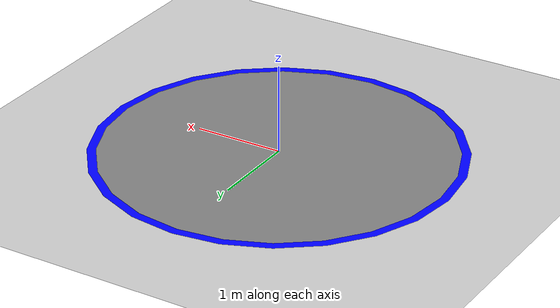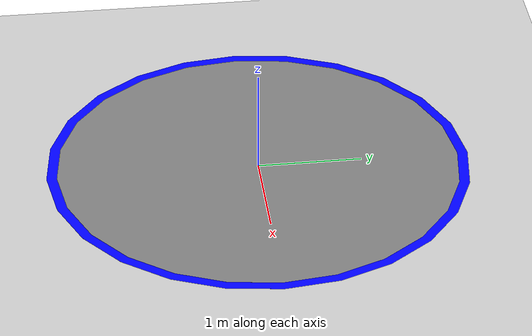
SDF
<?xml version="1.0" ?>
<sdf version='1.7'>
  <world name='default'>
    <light name='sun' type='directional'>
      <cast_shadows>1</cast_shadows>
      <pose>0 0 10 0 -0 0</pose>
      <diffuse>0.8 0.8 0.8 1</diffuse>
      <specular>0.2 0.2 0.2 1</specular>
      <direction>-0.5 0.1 -0.9</direction>
    </light>

    <model name='ground_plane'>
      <static>1</static>
      <link name='link'>
        <collision name='collision'>
          <geometry>
            <plane>
              <normal>0 0 1</normal>
              <size>100 100</size>
            </plane>
          </geometry>
          <laser_retro>0.0</laser_retro>
        </collision>
        <visual name='visual'>
          <geometry>
            <plane>
              <normal>0 0 1</normal>
              <size>100 100</size>
            </plane>
          </geometry>
          <material>
            <script>
              <uri>file://media/materials/scripts/gazebo.material</uri>
              <name>Gazebo/Grey</name>
            </script>
          </material>
        </visual>
      </link>
    </model>

    <model name='circular_track'>
      <static>1</static>
      <link name='link'>

        <visual name='outer_track_visual'>
          <pose>0 0 0.0001 0 0 0</pose>
          <geometry>
            <cylinder>
              <radius>2.05</radius>
              <length>0.0001</length>
            </cylinder>
          </geometry>
          <material>
            <ambient>0 0 1 1</ambient>
            <diffuse>0 0 1 1</diffuse>
          </material>
        </visual>

        <collision name='outer_track_collision'>
          <pose>0 0 0.0001 0 0 0</pose>
          <geometry>
            <cylinder>
              <radius>2.05</radius>
              <length>0.0001</length>
            </cylinder>
          </geometry>
          <laser_retro>1000.0</laser_retro> </collision>

        <visual name='inner_hole_visual'>
          <pose>0 0 0.0002 0 0 0</pose> <geometry>
            <cylinder>
              <radius>1.95</radius>
              <length>0.0001</length>
            </cylinder>
          </geometry>
          <material>
            <ambient>0.5 0.5 0.5 1</ambient>
            <diffuse>0.5 0.5 0.5 1</diffuse>
          </material>
        </visual>

        <collision name='inner_hole_collision'>
          <pose>0 0 0.0002 0 0 0</pose>
          <geometry>
            <cylinder>
              <radius>1.95</radius>
              <length>0.0001</length>
            </cylinder>
          </geometry>
          <laser_retro>0.0</laser_retro> </collision>

      </link>
    </model>

    <gravity>0 0 -9.8</gravity>
    <physics type='ode'>
      <max_step_size>0.001</max_step_size>
      <real_time_factor>1</real_time_factor>
      <real_time_update_rate>1000</real_time_update_rate>
    </physics>
  </world>
</sdf>
